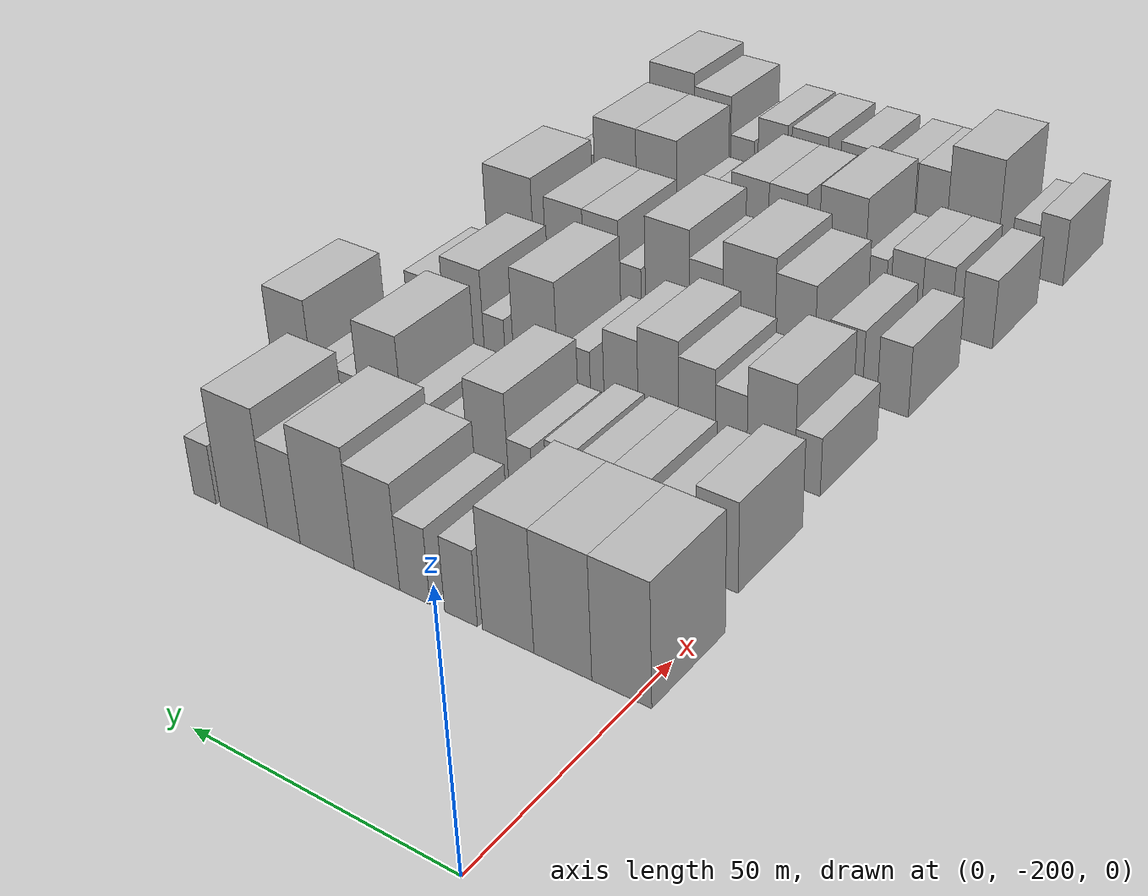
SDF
<sdf version="1.6">
 <world name="default">
  <model name="building_34">
   <static>1</static>
   <pose>50.0000 -197.7079 0 0.000000 0.000000 0.000000</pose>
   <link name="link">
    <pose>0 0 12.00 0 0 0</pose>
    <collision name="collision"><geometry><box><size>20.0000 10.8836 24.0000</size></box></geometry></collision>
    <visual name="visual">
     <cast_shadows>0</cast_shadows>
     <geometry><box><size>20.0000 10.8836 24.0000</size></box></geometry>
     <material>
      <script>
       <uri>model://HANNAS_wall/materials/scripts</uri>
       <uri>model://HANNAS_wall/materials/textures</uri>
       <name>vrc/HANNAS_wall</name>
      </script>
     </material>
    </visual>
   </link>
  </model>
  <model name="building_35">
   <static>1</static>
   <pose>50.0000 -186.8237 0 0.000000 0.000000 0.000000</pose>
   <link name="link">
    <pose>0 0 12.00 0 0 0</pose>
    <collision name="collision"><geometry><box><size>20.0000 10.8848 24.0000</size></box></geometry></collision>
    <visual name="visual">
     <cast_shadows>0</cast_shadows>
     <geometry><box><size>20.0000 10.8848 24.0000</size></box></geometry>
     <material>
      <script>
       <uri>model://HANNAS_wall/materials/scripts</uri>
       <uri>model://HANNAS_wall/materials/textures</uri>
       <name>vrc/HANNAS_wall</name>
      </script>
     </material>
    </visual>
   </link>
  </model>
  <model name="building_36">
   <static>1</static>
   <pose>50.0000 -176.3770 0 0.000000 0.000000 0.000000</pose>
   <link name="link">
    <pose>0 0 12.00 0 0 0</pose>
    <collision name="collision"><geometry><box><size>20.0000 10.0084 24.0000</size></box></geometry></collision>
    <visual name="visual">
     <cast_shadows>0</cast_shadows>
     <geometry><box><size>20.0000 10.0084 24.0000</size></box></geometry>
     <material>
      <script>
       <uri>model://HANNAS_wall/materials/scripts</uri>
       <uri>model://HANNAS_wall/materials/textures</uri>
       <name>vrc/HANNAS_wall</name>
      </script>
     </material>
    </visual>
   </link>
  </model>
  <model name="building_37">
   <static>1</static>
   <pose>50.0000 -167.0906 0 0.000000 0.000000 0.000000</pose>
   <link name="link">
    <pose>0 0 7.50 0 0 0</pose>
    <collision name="collision"><geometry><box><size>20.0000 6.5644 15.0000</size></box></geometry></collision>
    <visual name="visual">
     <cast_shadows>0</cast_shadows>
     <geometry><box><size>20.0000 6.5644 15.0000</size></box></geometry>
     <material>
      <script>
       <uri>model://HANNAS_wall/materials/scripts</uri>
       <uri>model://HANNAS_wall/materials/textures</uri>
       <name>vrc/HANNAS_wall</name>
      </script>
     </material>
    </visual>
   </link>
  </model>
  <model name="building_38">
   <static>1</static>
   <pose>50.0000 -157.7042 0 0.000000 0.000000 0.000000</pose>
   <link name="link">
    <pose>0 0 7.50 0 0 0</pose>
    <collision name="collision"><geometry><box><size>20.0000 6.2086 15.0000</size></box></geometry></collision>
    <visual name="visual">
     <cast_shadows>0</cast_shadows>
     <geometry><box><size>20.0000 6.2086 15.0000</size></box></geometry>
     <material>
      <script>
       <uri>model://HANNAS_wall/materials/scripts</uri>
       <uri>model://HANNAS_wall/materials/textures</uri>
       <name>vrc/HANNAS_wall</name>
      </script>
     </material>
    </visual>
   </link>
  </model>
  <model name="building_39">
   <static>1</static>
   <pose>50.0000 -149.7776 0 0.000000 0.000000 0.000000</pose>
   <link name="link">
    <pose>0 0 10.50 0 0 0</pose>
    <collision name="collision"><geometry><box><size>20.0000 9.6445 21.0000</size></box></geometry></collision>
    <visual name="visual">
     <cast_shadows>0</cast_shadows>
     <geometry><box><size>20.0000 9.6445 21.0000</size></box></geometry>
     <material>
      <script>
       <uri>model://HANNAS_wall/materials/scripts</uri>
       <uri>model://HANNAS_wall/materials/textures</uri>
       <name>vrc/HANNAS_wall</name>
      </script>
     </material>
    </visual>
   </link>
  </model>
  <model name="building_40">
   <static>1</static>
   <pose>50.0000 -139.0607 0 0.000000 0.000000 0.000000</pose>
   <link name="link">
    <pose>0 0 12.00 0 0 0</pose>
    <collision name="collision"><geometry><box><size>20.0000 11.7894 24.0000</size></box></geometry></collision>
    <visual name="visual">
     <cast_shadows>0</cast_shadows>
     <geometry><box><size>20.0000 11.7894 24.0000</size></box></geometry>
     <material>
      <script>
       <uri>model://HANNAS_wall/materials/scripts</uri>
       <uri>model://HANNAS_wall/materials/textures</uri>
       <name>vrc/HANNAS_wall</name>
      </script>
     </material>
    </visual>
   </link>
  </model>
  <model name="building_41">
   <static>1</static>
   <pose>50.0000 -129.5107 0 0.000000 0.000000 0.000000</pose>
   <link name="link">
    <pose>0 0 9.00 0 0 0</pose>
    <collision name="collision"><geometry><box><size>20.0000 7.3104 18.0000</size></box></geometry></collision>
    <visual name="visual">
     <cast_shadows>0</cast_shadows>
     <geometry><box><size>20.0000 7.3104 18.0000</size></box></geometry>
     <material>
      <script>
       <uri>model://HANNAS_wall/materials/scripts</uri>
       <uri>model://HANNAS_wall/materials/textures</uri>
       <name>vrc/HANNAS_wall</name>
      </script>
     </material>
    </visual>
   </link>
  </model>
  <model name="building_42">
   <static>1</static>
   <pose>50.0000 -120.3859 0 0.000000 0.000000 0.000000</pose>
   <link name="link">
    <pose>0 0 12.00 0 0 0</pose>
    <collision name="collision"><geometry><box><size>20.0000 10.9394 24.0000</size></box></geometry></collision>
    <visual name="visual">
     <cast_shadows>0</cast_shadows>
     <geometry><box><size>20.0000 10.9394 24.0000</size></box></geometry>
     <material>
      <script>
       <uri>model://HANNAS_wall/materials/scripts</uri>
       <uri>model://HANNAS_wall/materials/textures</uri>
       <name>vrc/HANNAS_wall</name>
      </script>
     </material>
    </visual>
   </link>
  </model>
  <model name="building_43">
   <static>1</static>
   <pose>50.0000 -111.2760 0 0.000000 0.000000 0.000000</pose>
   <link name="link">
    <pose>0 0 6.00 0 0 0</pose>
    <collision name="collision"><geometry><box><size>20.0000 5.2804 12.0000</size></box></geometry></collision>
    <visual name="visual">
     <cast_shadows>0</cast_shadows>
     <geometry><box><size>20.0000 5.2804 12.0000</size></box></geometry>
     <material>
      <script>
       <uri>model://HANNAS_wall/materials/scripts</uri>
       <uri>model://HANNAS_wall/materials/textures</uri>
       <name>vrc/HANNAS_wall</name>
      </script>
     </material>
    </visual>
   </link>
  </model>
  <model name="building_146">
   <static>1</static>
   <pose>79.0000 -195.7760 0 0.000000 0.000000 0.000000</pose>
   <link name="link">
    <pose>0 0 9.00 0 0 0</pose>
    <collision name="collision"><geometry><box><size>20.0000 8.0477 18.0000</size></box></geometry></collision>
    <visual name="visual">
     <cast_shadows>0</cast_shadows>
     <geometry><box><size>20.0000 8.0477 18.0000</size></box></geometry>
     <material>
      <script>
       <uri>model://HANNAS_wall/materials/scripts</uri>
       <uri>model://HANNAS_wall/materials/textures</uri>
       <name>vrc/HANNAS_wall</name>
      </script>
     </material>
    </visual>
   </link>
  </model>
  <model name="building_147">
   <static>1</static>
   <pose>79.0000 -188.2870 0 0.000000 0.000000 0.000000</pose>
   <link name="link">
    <pose>0 0 7.50 0 0 0</pose>
    <collision name="collision"><geometry><box><size>20.0000 6.9303 15.0000</size></box></geometry></collision>
    <visual name="visual">
     <cast_shadows>0</cast_shadows>
     <geometry><box><size>20.0000 6.9303 15.0000</size></box></geometry>
     <material>
      <script>
       <uri>model://HANNAS_wall/materials/scripts</uri>
       <uri>model://HANNAS_wall/materials/textures</uri>
       <name>vrc/HANNAS_wall</name>
      </script>
     </material>
    </visual>
   </link>
  </model>
  <model name="building_148">
   <static>1</static>
   <pose>79.0000 -179.1154 0 0.000000 0.000000 0.000000</pose>
   <link name="link">
    <pose>0 0 7.50 0 0 0</pose>
    <collision name="collision"><geometry><box><size>20.0000 7.4130 15.0000</size></box></geometry></collision>
    <visual name="visual">
     <cast_shadows>0</cast_shadows>
     <geometry><box><size>20.0000 7.4130 15.0000</size></box></geometry>
     <material>
      <script>
       <uri>model://HANNAS_wall/materials/scripts</uri>
       <uri>model://HANNAS_wall/materials/textures</uri>
       <name>vrc/HANNAS_wall</name>
      </script>
     </material>
    </visual>
   </link>
  </model>
  <model name="building_149">
   <static>1</static>
   <pose>79.0000 -172.2842 0 0.000000 0.000000 0.000000</pose>
   <link name="link">
    <pose>0 0 7.50 0 0 0</pose>
    <collision name="collision"><geometry><box><size>20.0000 6.2494 15.0000</size></box></geometry></collision>
    <visual name="visual">
     <cast_shadows>0</cast_shadows>
     <geometry><box><size>20.0000 6.2494 15.0000</size></box></geometry>
     <material>
      <script>
       <uri>model://HANNAS_wall/materials/scripts</uri>
       <uri>model://HANNAS_wall/materials/textures</uri>
       <name>vrc/HANNAS_wall</name>
      </script>
     </material>
    </visual>
   </link>
  </model>
  <model name="building_150">
   <static>1</static>
   <pose>79.0000 -165.0997 0 0.000000 0.000000 0.000000</pose>
   <link name="link">
    <pose>0 0 7.50 0 0 0</pose>
    <collision name="collision"><geometry><box><size>20.0000 6.1196 15.0000</size></box></geometry></collision>
    <visual name="visual">
     <cast_shadows>0</cast_shadows>
     <geometry><box><size>20.0000 6.1196 15.0000</size></box></geometry>
     <material>
      <script>
       <uri>model://HANNAS_wall/materials/scripts</uri>
       <uri>model://HANNAS_wall/materials/textures</uri>
       <name>vrc/HANNAS_wall</name>
      </script>
     </material>
    </visual>
   </link>
  </model>
  <model name="building_151">
   <static>1</static>
   <pose>79.0000 -156.4955 0 0.000000 0.000000 0.000000</pose>
   <link name="link">
    <pose>0 0 6.00 0 0 0</pose>
    <collision name="collision"><geometry><box><size>20.0000 5.0889 12.0000</size></box></geometry></collision>
    <visual name="visual">
     <cast_shadows>0</cast_shadows>
     <geometry><box><size>20.0000 5.0889 12.0000</size></box></geometry>
     <material>
      <script>
       <uri>model://HANNAS_wall/materials/scripts</uri>
       <uri>model://HANNAS_wall/materials/textures</uri>
       <name>vrc/HANNAS_wall</name>
      </script>
     </material>
    </visual>
   </link>
  </model>
  <model name="building_152">
   <static>1</static>
   <pose>79.0000 -149.5771 0 0.000000 0.000000 0.000000</pose>
   <link name="link">
    <pose>0 0 10.50 0 0 0</pose>
    <collision name="collision"><geometry><box><size>20.0000 8.7478 21.0000</size></box></geometry></collision>
    <visual name="visual">
     <cast_shadows>0</cast_shadows>
     <geometry><box><size>20.0000 8.7478 21.0000</size></box></geometry>
     <material>
      <script>
       <uri>model://HANNAS_wall/materials/scripts</uri>
       <uri>model://HANNAS_wall/materials/textures</uri>
       <name>vrc/HANNAS_wall</name>
      </script>
     </material>
    </visual>
   </link>
  </model>
  <model name="building_153">
   <static>1</static>
   <pose>79.0000 -142.5190 0 0.000000 0.000000 0.000000</pose>
   <link name="link">
    <pose>0 0 6.00 0 0 0</pose>
    <collision name="collision"><geometry><box><size>20.0000 5.3685 12.0000</size></box></geometry></collision>
    <visual name="visual">
     <cast_shadows>0</cast_shadows>
     <geometry><box><size>20.0000 5.3685 12.0000</size></box></geometry>
     <material>
      <script>
       <uri>model://HANNAS_wall/materials/scripts</uri>
       <uri>model://HANNAS_wall/materials/textures</uri>
       <name>vrc/HANNAS_wall</name>
      </script>
     </material>
    </visual>
   </link>
  </model>
  <model name="building_154">
   <static>1</static>
   <pose>79.0000 -133.8411 0 0.000000 0.000000 0.000000</pose>
   <link name="link">
    <pose>0 0 6.00 0 0 0</pose>
    <collision name="collision"><geometry><box><size>20.0000 5.9871 12.0000</size></box></geometry></collision>
    <visual name="visual">
     <cast_shadows>0</cast_shadows>
     <geometry><box><size>20.0000 5.9871 12.0000</size></box></geometry>
     <material>
      <script>
       <uri>model://HANNAS_wall/materials/scripts</uri>
       <uri>model://HANNAS_wall/materials/textures</uri>
       <name>vrc/HANNAS_wall</name>
      </script>
     </material>
    </visual>
   </link>
  </model>
  <model name="building_155">
   <static>1</static>
   <pose>79.0000 -125.9004 0 0.000000 0.000000 0.000000</pose>
   <link name="link">
    <pose>0 0 12.00 0 0 0</pose>
    <collision name="collision"><geometry><box><size>20.0000 9.8943 24.0000</size></box></geometry></collision>
    <visual name="visual">
     <cast_shadows>0</cast_shadows>
     <geometry><box><size>20.0000 9.8943 24.0000</size></box></geometry>
     <material>
      <script>
       <uri>model://HANNAS_wall/materials/scripts</uri>
       <uri>model://HANNAS_wall/materials/textures</uri>
       <name>vrc/HANNAS_wall</name>
      </script>
     </material>
    </visual>
   </link>
  </model>
  <model name="building_156">
   <static>1</static>
   <pose>79.0000 -117.9708 0 0.000000 0.000000 0.000000</pose>
   <link name="link">
    <pose>0 0 6.00 0 0 0</pose>
    <collision name="collision"><geometry><box><size>20.0000 5.9649 12.0000</size></box></geometry></collision>
    <visual name="visual">
     <cast_shadows>0</cast_shadows>
     <geometry><box><size>20.0000 5.9649 12.0000</size></box></geometry>
     <material>
      <script>
       <uri>model://HANNAS_wall/materials/scripts</uri>
       <uri>model://HANNAS_wall/materials/textures</uri>
       <name>vrc/HANNAS_wall</name>
      </script>
     </material>
    </visual>
   </link>
  </model>
  <model name="building_157">
   <static>1</static>
   <pose>79.0000 -112.3984 0 0.000000 0.000000 0.000000</pose>
   <link name="link">
    <pose>0 0 6.00 0 0 0</pose>
    <collision name="collision"><geometry><box><size>20.0000 5.1799 12.0000</size></box></geometry></collision>
    <visual name="visual">
     <cast_shadows>0</cast_shadows>
     <geometry><box><size>20.0000 5.1799 12.0000</size></box></geometry>
     <material>
      <script>
       <uri>model://HANNAS_wall/materials/scripts</uri>
       <uri>model://HANNAS_wall/materials/textures</uri>
       <name>vrc/HANNAS_wall</name>
      </script>
     </material>
    </visual>
   </link>
  </model>
  <model name="building_158">
   <static>1</static>
   <pose>79.0000 -104.9237 0 0.000000 0.000000 0.000000</pose>
   <link name="link">
    <pose>0 0 12.00 0 0 0</pose>
    <collision name="collision"><geometry><box><size>20.0000 9.7696 24.0000</size></box></geometry></collision>
    <visual name="visual">
     <cast_shadows>0</cast_shadows>
     <geometry><box><size>20.0000 9.7696 24.0000</size></box></geometry>
     <material>
      <script>
       <uri>model://HANNAS_wall/materials/scripts</uri>
       <uri>model://HANNAS_wall/materials/textures</uri>
       <name>vrc/HANNAS_wall</name>
      </script>
     </material>
    </visual>
   </link>
  </model>
  <model name="building_257">
   <static>1</static>
   <pose>108.0000 -195.3791 0 0.000000 0.000000 0.000000</pose>
   <link name="link">
    <pose>0 0 6.00 0 0 0</pose>
    <collision name="collision"><geometry><box><size>20.0000 5.1094 12.0000</size></box></geometry></collision>
    <visual name="visual">
     <cast_shadows>0</cast_shadows>
     <geometry><box><size>20.0000 5.1094 12.0000</size></box></geometry>
     <material>
      <script>
       <uri>model://HANNAS_wall/materials/scripts</uri>
       <uri>model://HANNAS_wall/materials/textures</uri>
       <name>vrc/HANNAS_wall</name>
      </script>
     </material>
    </visual>
   </link>
  </model>
  <model name="building_258">
   <static>1</static>
   <pose>108.0000 -188.0142 0 0.000000 0.000000 0.000000</pose>
   <link name="link">
    <pose>0 0 10.50 0 0 0</pose>
    <collision name="collision"><geometry><box><size>20.0000 9.6203 21.0000</size></box></geometry></collision>
    <visual name="visual">
     <cast_shadows>0</cast_shadows>
     <geometry><box><size>20.0000 9.6203 21.0000</size></box></geometry>
     <material>
      <script>
       <uri>model://HANNAS_wall/materials/scripts</uri>
       <uri>model://HANNAS_wall/materials/textures</uri>
       <name>vrc/HANNAS_wall</name>
      </script>
     </material>
    </visual>
   </link>
  </model>
  <model name="building_259">
   <static>1</static>
   <pose>108.0000 -179.9520 0 0.000000 0.000000 0.000000</pose>
   <link name="link">
    <pose>0 0 7.50 0 0 0</pose>
    <collision name="collision"><geometry><box><size>20.0000 6.5041 15.0000</size></box></geometry></collision>
    <visual name="visual">
     <cast_shadows>0</cast_shadows>
     <geometry><box><size>20.0000 6.5041 15.0000</size></box></geometry>
     <material>
      <script>
       <uri>model://HANNAS_wall/materials/scripts</uri>
       <uri>model://HANNAS_wall/materials/textures</uri>
       <name>vrc/HANNAS_wall</name>
      </script>
     </material>
    </visual>
   </link>
  </model>
  <model name="building_260">
   <static>1</static>
   <pose>108.0000 -172.8795 0 0.000000 0.000000 0.000000</pose>
   <link name="link">
    <pose>0 0 9.00 0 0 0</pose>
    <collision name="collision"><geometry><box><size>20.0000 7.6411 18.0000</size></box></geometry></collision>
    <visual name="visual">
     <cast_shadows>0</cast_shadows>
     <geometry><box><size>20.0000 7.6411 18.0000</size></box></geometry>
     <material>
      <script>
       <uri>model://HANNAS_wall/materials/scripts</uri>
       <uri>model://HANNAS_wall/materials/textures</uri>
       <name>vrc/HANNAS_wall</name>
      </script>
     </material>
    </visual>
   </link>
  </model>
  <model name="building_261">
   <static>1</static>
   <pose>108.0000 -164.7152 0 0.000000 0.000000 0.000000</pose>
   <link name="link">
    <pose>0 0 10.50 0 0 0</pose>
    <collision name="collision"><geometry><box><size>20.0000 8.6874 21.0000</size></box></geometry></collision>
    <visual name="visual">
     <cast_shadows>0</cast_shadows>
     <geometry><box><size>20.0000 8.6874 21.0000</size></box></geometry>
     <material>
      <script>
       <uri>model://HANNAS_wall/materials/scripts</uri>
       <uri>model://HANNAS_wall/materials/textures</uri>
       <name>vrc/HANNAS_wall</name>
      </script>
     </material>
    </visual>
   </link>
  </model>
  <model name="building_262">
   <static>1</static>
   <pose>108.0000 -156.6391 0 0.000000 0.000000 0.000000</pose>
   <link name="link">
    <pose>0 0 9.00 0 0 0</pose>
    <collision name="collision"><geometry><box><size>20.0000 7.4649 18.0000</size></box></geometry></collision>
    <visual name="visual">
     <cast_shadows>0</cast_shadows>
     <geometry><box><size>20.0000 7.4649 18.0000</size></box></geometry>
     <material>
      <script>
       <uri>model://HANNAS_wall/materials/scripts</uri>
       <uri>model://HANNAS_wall/materials/textures</uri>
       <name>vrc/HANNAS_wall</name>
      </script>
     </material>
    </visual>
   </link>
  </model>
  <model name="building_263">
   <static>1</static>
   <pose>108.0000 -147.2265 0 0.000000 0.000000 0.000000</pose>
   <link name="link">
    <pose>0 0 6.00 0 0 0</pose>
    <collision name="collision"><geometry><box><size>20.0000 5.3602 12.0000</size></box></geometry></collision>
    <visual name="visual">
     <cast_shadows>0</cast_shadows>
     <geometry><box><size>20.0000 5.3602 12.0000</size></box></geometry>
     <material>
      <script>
       <uri>model://HANNAS_wall/materials/scripts</uri>
       <uri>model://HANNAS_wall/materials/textures</uri>
       <name>vrc/HANNAS_wall</name>
      </script>
     </material>
    </visual>
   </link>
  </model>
  <model name="building_264">
   <static>1</static>
   <pose>108.0000 -137.4820 0 0.000000 0.000000 0.000000</pose>
   <link name="link">
    <pose>0 0 12.00 0 0 0</pose>
    <collision name="collision"><geometry><box><size>20.0000 10.1288 24.0000</size></box></geometry></collision>
    <visual name="visual">
     <cast_shadows>0</cast_shadows>
     <geometry><box><size>20.0000 10.1288 24.0000</size></box></geometry>
     <material>
      <script>
       <uri>model://HANNAS_wall/materials/scripts</uri>
       <uri>model://HANNAS_wall/materials/textures</uri>
       <name>vrc/HANNAS_wall</name>
      </script>
     </material>
    </visual>
   </link>
  </model>
  <model name="building_265">
   <static>1</static>
   <pose>108.0000 -127.9384 0 0.000000 0.000000 0.000000</pose>
   <link name="link">
    <pose>0 0 6.00 0 0 0</pose>
    <collision name="collision"><geometry><box><size>20.0000 4.9584 12.0000</size></box></geometry></collision>
    <visual name="visual">
     <cast_shadows>0</cast_shadows>
     <geometry><box><size>20.0000 4.9584 12.0000</size></box></geometry>
     <material>
      <script>
       <uri>model://HANNAS_wall/materials/scripts</uri>
       <uri>model://HANNAS_wall/materials/textures</uri>
       <name>vrc/HANNAS_wall</name>
      </script>
     </material>
    </visual>
   </link>
  </model>
  <model name="building_266">
   <static>1</static>
   <pose>108.0000 -120.7843 0 0.000000 0.000000 0.000000</pose>
   <link name="link">
    <pose>0 0 10.50 0 0 0</pose>
    <collision name="collision"><geometry><box><size>20.0000 9.3498 21.0000</size></box></geometry></collision>
    <visual name="visual">
     <cast_shadows>0</cast_shadows>
     <geometry><box><size>20.0000 9.3498 21.0000</size></box></geometry>
     <material>
      <script>
       <uri>model://HANNAS_wall/materials/scripts</uri>
       <uri>model://HANNAS_wall/materials/textures</uri>
       <name>vrc/HANNAS_wall</name>
      </script>
     </material>
    </visual>
   </link>
  </model>
  <model name="building_267">
   <static>1</static>
   <pose>108.0000 -110.5359 0 0.000000 0.000000 0.000000</pose>
   <link name="link">
    <pose>0 0 7.50 0 0 0</pose>
    <collision name="collision"><geometry><box><size>20.0000 7.1470 15.0000</size></box></geometry></collision>
    <visual name="visual">
     <cast_shadows>0</cast_shadows>
     <geometry><box><size>20.0000 7.1470 15.0000</size></box></geometry>
     <material>
      <script>
       <uri>model://HANNAS_wall/materials/scripts</uri>
       <uri>model://HANNAS_wall/materials/textures</uri>
       <name>vrc/HANNAS_wall</name>
      </script>
     </material>
    </visual>
   </link>
  </model>
  <model name="building_369">
   <static>1</static>
   <pose>137.0000 -196.1251 0 0.000000 0.000000 0.000000</pose>
   <link name="link">
    <pose>0 0 7.50 0 0 0</pose>
    <collision name="collision"><geometry><box><size>20.0000 6.4953 15.0000</size></box></geometry></collision>
    <visual name="visual">
     <cast_shadows>0</cast_shadows>
     <geometry><box><size>20.0000 6.4953 15.0000</size></box></geometry>
     <material>
      <script>
       <uri>model://HANNAS_wall/materials/scripts</uri>
       <uri>model://HANNAS_wall/materials/textures</uri>
       <name>vrc/HANNAS_wall</name>
      </script>
     </material>
    </visual>
   </link>
  </model>
  <model name="building_370">
   <static>1</static>
   <pose>137.0000 -186.2544 0 0.000000 0.000000 0.000000</pose>
   <link name="link">
    <pose>0 0 7.50 0 0 0</pose>
    <collision name="collision"><geometry><box><size>20.0000 7.2460 15.0000</size></box></geometry></collision>
    <visual name="visual">
     <cast_shadows>0</cast_shadows>
     <geometry><box><size>20.0000 7.2460 15.0000</size></box></geometry>
     <material>
      <script>
       <uri>model://HANNAS_wall/materials/scripts</uri>
       <uri>model://HANNAS_wall/materials/textures</uri>
       <name>vrc/HANNAS_wall</name>
      </script>
     </material>
    </visual>
   </link>
  </model>
  <model name="building_371">
   <static>1</static>
   <pose>137.0000 -175.3504 0 0.000000 0.000000 0.000000</pose>
   <link name="link">
    <pose>0 0 10.50 0 0 0</pose>
    <collision name="collision"><geometry><box><size>20.0000 8.5620 21.0000</size></box></geometry></collision>
    <visual name="visual">
     <cast_shadows>0</cast_shadows>
     <geometry><box><size>20.0000 8.5620 21.0000</size></box></geometry>
     <material>
      <script>
       <uri>model://HANNAS_wall/materials/scripts</uri>
       <uri>model://HANNAS_wall/materials/textures</uri>
       <name>vrc/HANNAS_wall</name>
      </script>
     </material>
    </visual>
   </link>
  </model>
  <model name="building_372">
   <static>1</static>
   <pose>137.0000 -165.3403 0 0.000000 0.000000 0.000000</pose>
   <link name="link">
    <pose>0 0 12.00 0 0 0</pose>
    <collision name="collision"><geometry><box><size>20.0000 11.4583 24.0000</size></box></geometry></collision>
    <visual name="visual">
     <cast_shadows>0</cast_shadows>
     <geometry><box><size>20.0000 11.4583 24.0000</size></box></geometry>
     <material>
      <script>
       <uri>model://HANNAS_wall/materials/scripts</uri>
       <uri>model://HANNAS_wall/materials/textures</uri>
       <name>vrc/HANNAS_wall</name>
      </script>
     </material>
    </visual>
   </link>
  </model>
  <model name="building_373">
   <static>1</static>
   <pose>137.0000 -155.8383 0 0.000000 0.000000 0.000000</pose>
   <link name="link">
    <pose>0 0 9.00 0 0 0</pose>
    <collision name="collision"><geometry><box><size>20.0000 7.5457 18.0000</size></box></geometry></collision>
    <visual name="visual">
     <cast_shadows>0</cast_shadows>
     <geometry><box><size>20.0000 7.5457 18.0000</size></box></geometry>
     <material>
      <script>
       <uri>model://HANNAS_wall/materials/scripts</uri>
       <uri>model://HANNAS_wall/materials/textures</uri>
       <name>vrc/HANNAS_wall</name>
      </script>
     </material>
    </visual>
   </link>
  </model>
  <model name="building_374">
   <static>1</static>
   <pose>137.0000 -146.9967 0 0.000000 0.000000 0.000000</pose>
   <link name="link">
    <pose>0 0 12.00 0 0 0</pose>
    <collision name="collision"><geometry><box><size>20.0000 10.1375 24.0000</size></box></geometry></collision>
    <visual name="visual">
     <cast_shadows>0</cast_shadows>
     <geometry><box><size>20.0000 10.1375 24.0000</size></box></geometry>
     <material>
      <script>
       <uri>model://HANNAS_wall/materials/scripts</uri>
       <uri>model://HANNAS_wall/materials/textures</uri>
       <name>vrc/HANNAS_wall</name>
      </script>
     </material>
    </visual>
   </link>
  </model>
  <model name="building_375">
   <static>1</static>
   <pose>137.0000 -138.3328 0 0.000000 0.000000 0.000000</pose>
   <link name="link">
    <pose>0 0 6.00 0 0 0</pose>
    <collision name="collision"><geometry><box><size>20.0000 5.1903 12.0000</size></box></geometry></collision>
    <visual name="visual">
     <cast_shadows>0</cast_shadows>
     <geometry><box><size>20.0000 5.1903 12.0000</size></box></geometry>
     <material>
      <script>
       <uri>model://HANNAS_wall/materials/scripts</uri>
       <uri>model://HANNAS_wall/materials/textures</uri>
       <name>vrc/HANNAS_wall</name>
      </script>
     </material>
    </visual>
   </link>
  </model>
  <model name="building_376">
   <static>1</static>
   <pose>137.0000 -131.4876 0 0.000000 0.000000 0.000000</pose>
   <link name="link">
    <pose>0 0 10.50 0 0 0</pose>
    <collision name="collision"><geometry><box><size>20.0000 8.4999 21.0000</size></box></geometry></collision>
    <visual name="visual">
     <cast_shadows>0</cast_shadows>
     <geometry><box><size>20.0000 8.4999 21.0000</size></box></geometry>
     <material>
      <script>
       <uri>model://HANNAS_wall/materials/scripts</uri>
       <uri>model://HANNAS_wall/materials/textures</uri>
       <name>vrc/HANNAS_wall</name>
      </script>
     </material>
    </visual>
   </link>
  </model>
  <model name="building_377">
   <static>1</static>
   <pose>137.0000 -122.6131 0 0.000000 0.000000 0.000000</pose>
   <link name="link">
    <pose>0 0 10.50 0 0 0</pose>
    <collision name="collision"><geometry><box><size>20.0000 9.2492 21.0000</size></box></geometry></collision>
    <visual name="visual">
     <cast_shadows>0</cast_shadows>
     <geometry><box><size>20.0000 9.2492 21.0000</size></box></geometry>
     <material>
      <script>
       <uri>model://HANNAS_wall/materials/scripts</uri>
       <uri>model://HANNAS_wall/materials/textures</uri>
       <name>vrc/HANNAS_wall</name>
      </script>
     </material>
    </visual>
   </link>
  </model>
  <model name="building_378">
   <static>1</static>
   <pose>137.0000 -109.0347 0 0.000000 0.000000 0.000000</pose>
   <link name="link">
    <pose>0 0 12.00 0 0 0</pose>
    <collision name="collision"><geometry><box><size>20.0000 11.9074 24.0000</size></box></geometry></collision>
    <visual name="visual">
     <cast_shadows>0</cast_shadows>
     <geometry><box><size>20.0000 11.9074 24.0000</size></box></geometry>
     <material>
      <script>
       <uri>model://HANNAS_wall/materials/scripts</uri>
       <uri>model://HANNAS_wall/materials/textures</uri>
       <name>vrc/HANNAS_wall</name>
      </script>
     </material>
    </visual>
   </link>
  </model>
  <model name="building_486">
   <static>1</static>
   <pose>166.0000 -198.5895 0 0.000000 0.000000 0.000000</pose>
   <link name="link">
    <pose>0 0 7.50 0 0 0</pose>
    <collision name="collision"><geometry><box><size>20.0000 6.8300 15.0000</size></box></geometry></collision>
    <visual name="visual">
     <cast_shadows>0</cast_shadows>
     <geometry><box><size>20.0000 6.8300 15.0000</size></box></geometry>
     <material>
      <script>
       <uri>model://HANNAS_wall/materials/scripts</uri>
       <uri>model://HANNAS_wall/materials/textures</uri>
       <name>vrc/HANNAS_wall</name>
      </script>
     </material>
    </visual>
   </link>
  </model>
  <model name="building_487">
   <static>1</static>
   <pose>166.0000 -189.9064 0 0.000000 0.000000 0.000000</pose>
   <link name="link">
    <pose>0 0 7.50 0 0 0</pose>
    <collision name="collision"><geometry><box><size>20.0000 6.5362 15.0000</size></box></geometry></collision>
    <visual name="visual">
     <cast_shadows>0</cast_shadows>
     <geometry><box><size>20.0000 6.5362 15.0000</size></box></geometry>
     <material>
      <script>
       <uri>model://HANNAS_wall/materials/scripts</uri>
       <uri>model://HANNAS_wall/materials/textures</uri>
       <name>vrc/HANNAS_wall</name>
      </script>
     </material>
    </visual>
   </link>
  </model>
  <model name="building_488">
   <static>1</static>
   <pose>166.0000 -183.2185 0 0.000000 0.000000 0.000000</pose>
   <link name="link">
    <pose>0 0 7.50 0 0 0</pose>
    <collision name="collision"><geometry><box><size>20.0000 6.8397 15.0000</size></box></geometry></collision>
    <visual name="visual">
     <cast_shadows>0</cast_shadows>
     <geometry><box><size>20.0000 6.8397 15.0000</size></box></geometry>
     <material>
      <script>
       <uri>model://HANNAS_wall/materials/scripts</uri>
       <uri>model://HANNAS_wall/materials/textures</uri>
       <name>vrc/HANNAS_wall</name>
      </script>
     </material>
    </visual>
   </link>
  </model>
  <model name="building_489">
   <static>1</static>
   <pose>166.0000 -176.3779 0 0.000000 0.000000 0.000000</pose>
   <link name="link">
    <pose>0 0 6.00 0 0 0</pose>
    <collision name="collision"><geometry><box><size>20.0000 4.8415 12.0000</size></box></geometry></collision>
    <visual name="visual">
     <cast_shadows>0</cast_shadows>
     <geometry><box><size>20.0000 4.8415 12.0000</size></box></geometry>
     <material>
      <script>
       <uri>model://HANNAS_wall/materials/scripts</uri>
       <uri>model://HANNAS_wall/materials/textures</uri>
       <name>vrc/HANNAS_wall</name>
      </script>
     </material>
    </visual>
   </link>
  </model>
  <model name="building_490">
   <static>1</static>
   <pose>166.0000 -168.7188 0 0.000000 0.000000 0.000000</pose>
   <link name="link">
    <pose>0 0 12.00 0 0 0</pose>
    <collision name="collision"><geometry><box><size>20.0000 10.4767 24.0000</size></box></geometry></collision>
    <visual name="visual">
     <cast_shadows>0</cast_shadows>
     <geometry><box><size>20.0000 10.4767 24.0000</size></box></geometry>
     <material>
      <script>
       <uri>model://HANNAS_wall/materials/scripts</uri>
       <uri>model://HANNAS_wall/materials/textures</uri>
       <name>vrc/HANNAS_wall</name>
      </script>
     </material>
    </visual>
   </link>
  </model>
  <model name="building_491">
   <static>1</static>
   <pose>166.0000 -156.1273 0 0.000000 0.000000 0.000000</pose>
   <link name="link">
    <pose>0 0 10.50 0 0 0</pose>
    <collision name="collision"><geometry><box><size>20.0000 8.7063 21.0000</size></box></geometry></collision>
    <visual name="visual">
     <cast_shadows>0</cast_shadows>
     <geometry><box><size>20.0000 8.7063 21.0000</size></box></geometry>
     <material>
      <script>
       <uri>model://HANNAS_wall/materials/scripts</uri>
       <uri>model://HANNAS_wall/materials/textures</uri>
       <name>vrc/HANNAS_wall</name>
      </script>
     </material>
    </visual>
   </link>
  </model>
  <model name="building_492">
   <static>1</static>
   <pose>166.0000 -147.3426 0 0.000000 0.000000 0.000000</pose>
   <link name="link">
    <pose>0 0 10.50 0 0 0</pose>
    <collision name="collision"><geometry><box><size>20.0000 8.8631 21.0000</size></box></geometry></collision>
    <visual name="visual">
     <cast_shadows>0</cast_shadows>
     <geometry><box><size>20.0000 8.8631 21.0000</size></box></geometry>
     <material>
      <script>
       <uri>model://HANNAS_wall/materials/scripts</uri>
       <uri>model://HANNAS_wall/materials/textures</uri>
       <name>vrc/HANNAS_wall</name>
      </script>
     </material>
    </visual>
   </link>
  </model>
  <model name="building_493">
   <static>1</static>
   <pose>166.0000 -139.7241 0 0.000000 0.000000 0.000000</pose>
   <link name="link">
    <pose>0 0 7.50 0 0 0</pose>
    <collision name="collision"><geometry><box><size>20.0000 6.3739 15.0000</size></box></geometry></collision>
    <visual name="visual">
     <cast_shadows>0</cast_shadows>
     <geometry><box><size>20.0000 6.3739 15.0000</size></box></geometry>
     <material>
      <script>
       <uri>model://HANNAS_wall/materials/scripts</uri>
       <uri>model://HANNAS_wall/materials/textures</uri>
       <name>vrc/HANNAS_wall</name>
      </script>
     </material>
    </visual>
   </link>
  </model>
  <model name="building_494">
   <static>1</static>
   <pose>166.0000 -132.6224 0 0.000000 0.000000 0.000000</pose>
   <link name="link">
    <pose>0 0 6.00 0 0 0</pose>
    <collision name="collision"><geometry><box><size>20.0000 5.8296 12.0000</size></box></geometry></collision>
    <visual name="visual">
     <cast_shadows>0</cast_shadows>
     <geometry><box><size>20.0000 5.8296 12.0000</size></box></geometry>
     <material>
      <script>
       <uri>model://HANNAS_wall/materials/scripts</uri>
       <uri>model://HANNAS_wall/materials/textures</uri>
       <name>vrc/HANNAS_wall</name>
      </script>
     </material>
    </visual>
   </link>
  </model>
  <model name="building_495">
   <static>1</static>
   <pose>166.0000 -124.6679 0 0.000000 0.000000 0.000000</pose>
   <link name="link">
    <pose>0 0 12.00 0 0 0</pose>
    <collision name="collision"><geometry><box><size>20.0000 10.0795 24.0000</size></box></geometry></collision>
    <visual name="visual">
     <cast_shadows>0</cast_shadows>
     <geometry><box><size>20.0000 10.0795 24.0000</size></box></geometry>
     <material>
      <script>
       <uri>model://HANNAS_wall/materials/scripts</uri>
       <uri>model://HANNAS_wall/materials/textures</uri>
       <name>vrc/HANNAS_wall</name>
      </script>
     </material>
    </visual>
   </link>
  </model>
  <model name="building_496">
   <static>1</static>
   <pose>166.0000 -114.2888 0 0.000000 0.000000 0.000000</pose>
   <link name="link">
    <pose>0 0 12.00 0 0 0</pose>
    <collision name="collision"><geometry><box><size>20.0000 10.6787 24.0000</size></box></geometry></collision>
    <visual name="visual">
     <cast_shadows>0</cast_shadows>
     <geometry><box><size>20.0000 10.6787 24.0000</size></box></geometry>
     <material>
      <script>
       <uri>model://HANNAS_wall/materials/scripts</uri>
       <uri>model://HANNAS_wall/materials/textures</uri>
       <name>vrc/HANNAS_wall</name>
      </script>
     </material>
    </visual>
   </link>
  </model>
  <model name="building_497">
   <static>1</static>
   <pose>166.0000 -105.8576 0 0.000000 0.000000 0.000000</pose>
   <link name="link">
    <pose>0 0 7.50 0 0 0</pose>
    <collision name="collision"><geometry><box><size>20.0000 6.1838 15.0000</size></box></geometry></collision>
    <visual name="visual">
     <cast_shadows>0</cast_shadows>
     <geometry><box><size>20.0000 6.1838 15.0000</size></box></geometry>
     <material>
      <script>
       <uri>model://HANNAS_wall/materials/scripts</uri>
       <uri>model://HANNAS_wall/materials/textures</uri>
       <name>vrc/HANNAS_wall</name>
      </script>
     </material>
    </visual>
   </link>
  </model>
  <model name="building_604">
   <static>1</static>
   <pose>195.0000 -200.4940 0 0.000000 0.000000 0.000000</pose>
   <link name="link">
    <pose>0 0 7.50 0 0 0</pose>
    <collision name="collision"><geometry><box><size>20.0000 6.0161 15.0000</size></box></geometry></collision>
    <visual name="visual">
     <cast_shadows>0</cast_shadows>
     <geometry><box><size>20.0000 6.0161 15.0000</size></box></geometry>
     <material>
      <script>
       <uri>model://HANNAS_wall/materials/scripts</uri>
       <uri>model://HANNAS_wall/materials/textures</uri>
       <name>vrc/HANNAS_wall</name>
      </script>
     </material>
    </visual>
   </link>
  </model>
  <model name="building_605">
   <static>1</static>
   <pose>195.0000 -194.6623 0 0.000000 0.000000 0.000000</pose>
   <link name="link">
    <pose>0 0 6.00 0 0 0</pose>
    <collision name="collision"><geometry><box><size>20.0000 5.6472 12.0000</size></box></geometry></collision>
    <visual name="visual">
     <cast_shadows>0</cast_shadows>
     <geometry><box><size>20.0000 5.6472 12.0000</size></box></geometry>
     <material>
      <script>
       <uri>model://HANNAS_wall/materials/scripts</uri>
       <uri>model://HANNAS_wall/materials/textures</uri>
       <name>vrc/HANNAS_wall</name>
      </script>
     </material>
    </visual>
   </link>
  </model>
  <model name="building_606">
   <static>1</static>
   <pose>195.0000 -182.9878 0 0.000000 0.000000 0.000000</pose>
   <link name="link">
    <pose>0 0 12.00 0 0 0</pose>
    <collision name="collision"><geometry><box><size>20.0000 11.7018 24.0000</size></box></geometry></collision>
    <visual name="visual">
     <cast_shadows>0</cast_shadows>
     <geometry><box><size>20.0000 11.7018 24.0000</size></box></geometry>
     <material>
      <script>
       <uri>model://HANNAS_wall/materials/scripts</uri>
       <uri>model://HANNAS_wall/materials/textures</uri>
       <name>vrc/HANNAS_wall</name>
      </script>
     </material>
    </visual>
   </link>
  </model>
  <model name="building_607">
   <static>1</static>
   <pose>195.0000 -173.5114 0 0.000000 0.000000 0.000000</pose>
   <link name="link">
    <pose>0 0 9.00 0 0 0</pose>
    <collision name="collision"><geometry><box><size>20.0000 7.2510 18.0000</size></box></geometry></collision>
    <visual name="visual">
     <cast_shadows>0</cast_shadows>
     <geometry><box><size>20.0000 7.2510 18.0000</size></box></geometry>
     <material>
      <script>
       <uri>model://HANNAS_wall/materials/scripts</uri>
       <uri>model://HANNAS_wall/materials/textures</uri>
       <name>vrc/HANNAS_wall</name>
      </script>
     </material>
    </visual>
   </link>
  </model>
  <model name="building_608">
   <static>1</static>
   <pose>195.0000 -166.2612 0 0.000000 0.000000 0.000000</pose>
   <link name="link">
    <pose>0 0 9.00 0 0 0</pose>
    <collision name="collision"><geometry><box><size>20.0000 7.2494 18.0000</size></box></geometry></collision>
    <visual name="visual">
     <cast_shadows>0</cast_shadows>
     <geometry><box><size>20.0000 7.2494 18.0000</size></box></geometry>
     <material>
      <script>
       <uri>model://HANNAS_wall/materials/scripts</uri>
       <uri>model://HANNAS_wall/materials/textures</uri>
       <name>vrc/HANNAS_wall</name>
      </script>
     </material>
    </visual>
   </link>
  </model>
  <model name="building_609">
   <static>1</static>
   <pose>195.0000 -155.6534 0 0.000000 0.000000 0.000000</pose>
   <link name="link">
    <pose>0 0 9.00 0 0 0</pose>
    <collision name="collision"><geometry><box><size>20.0000 7.9662 18.0000</size></box></geometry></collision>
    <visual name="visual">
     <cast_shadows>0</cast_shadows>
     <geometry><box><size>20.0000 7.9662 18.0000</size></box></geometry>
     <material>
      <script>
       <uri>model://HANNAS_wall/materials/scripts</uri>
       <uri>model://HANNAS_wall/materials/textures</uri>
       <name>vrc/HANNAS_wall</name>
      </script>
     </material>
    </visual>
   </link>
  </model>
  <model name="building_610">
   <static>1</static>
   <pose>195.0000 -144.1962 0 0.000000 0.000000 0.000000</pose>
   <link name="link">
    <pose>0 0 9.00 0 0 0</pose>
    <collision name="collision"><geometry><box><size>20.0000 8.9482 18.0000</size></box></geometry></collision>
    <visual name="visual">
     <cast_shadows>0</cast_shadows>
     <geometry><box><size>20.0000 8.9482 18.0000</size></box></geometry>
     <material>
      <script>
       <uri>model://HANNAS_wall/materials/scripts</uri>
       <uri>model://HANNAS_wall/materials/textures</uri>
       <name>vrc/HANNAS_wall</name>
      </script>
     </material>
    </visual>
   </link>
  </model>
  <model name="building_611">
   <static>1</static>
   <pose>195.0000 -135.0576 0 0.000000 0.000000 0.000000</pose>
   <link name="link">
    <pose>0 0 9.00 0 0 0</pose>
    <collision name="collision"><geometry><box><size>20.0000 7.3291 18.0000</size></box></geometry></collision>
    <visual name="visual">
     <cast_shadows>0</cast_shadows>
     <geometry><box><size>20.0000 7.3291 18.0000</size></box></geometry>
     <material>
      <script>
       <uri>model://HANNAS_wall/materials/scripts</uri>
       <uri>model://HANNAS_wall/materials/textures</uri>
       <name>vrc/HANNAS_wall</name>
      </script>
     </material>
    </visual>
   </link>
  </model>
  <model name="building_612">
   <static>1</static>
   <pose>195.0000 -127.4126 0 0.000000 0.000000 0.000000</pose>
   <link name="link">
    <pose>0 0 6.00 0 0 0</pose>
    <collision name="collision"><geometry><box><size>20.0000 5.9608 12.0000</size></box></geometry></collision>
    <visual name="visual">
     <cast_shadows>0</cast_shadows>
     <geometry><box><size>20.0000 5.9608 12.0000</size></box></geometry>
     <material>
      <script>
       <uri>model://HANNAS_wall/materials/scripts</uri>
       <uri>model://HANNAS_wall/materials/textures</uri>
       <name>vrc/HANNAS_wall</name>
      </script>
     </material>
    </visual>
   </link>
  </model>
  <model name="building_613">
   <static>1</static>
   <pose>195.0000 -119.6721 0 0.000000 0.000000 0.000000</pose>
   <link name="link">
    <pose>0 0 10.50 0 0 0</pose>
    <collision name="collision"><geometry><box><size>20.0000 9.5203 21.0000</size></box></geometry></collision>
    <visual name="visual">
     <cast_shadows>0</cast_shadows>
     <geometry><box><size>20.0000 9.5203 21.0000</size></box></geometry>
     <material>
      <script>
       <uri>model://HANNAS_wall/materials/scripts</uri>
       <uri>model://HANNAS_wall/materials/textures</uri>
       <name>vrc/HANNAS_wall</name>
      </script>
     </material>
    </visual>
   </link>
  </model>
  <model name="building_614">
   <static>1</static>
   <pose>195.0000 -109.0168 0 0.000000 0.000000 0.000000</pose>
   <link name="link">
    <pose>0 0 12.00 0 0 0</pose>
    <collision name="collision"><geometry><box><size>20.0000 11.7902 24.0000</size></box></geometry></collision>
    <visual name="visual">
     <cast_shadows>0</cast_shadows>
     <geometry><box><size>20.0000 11.7902 24.0000</size></box></geometry>
     <material>
      <script>
       <uri>model://HANNAS_wall/materials/scripts</uri>
       <uri>model://HANNAS_wall/materials/textures</uri>
       <name>vrc/HANNAS_wall</name>
      </script>
     </material>
    </visual>
   </link>
  </model>
 </world>
</sdf>
